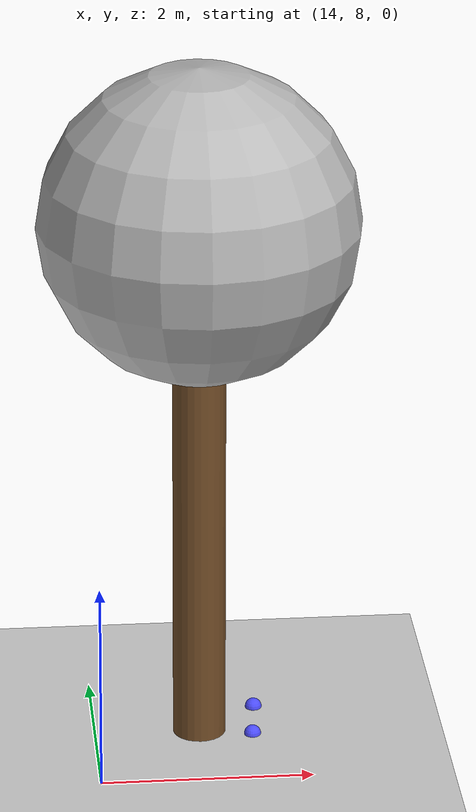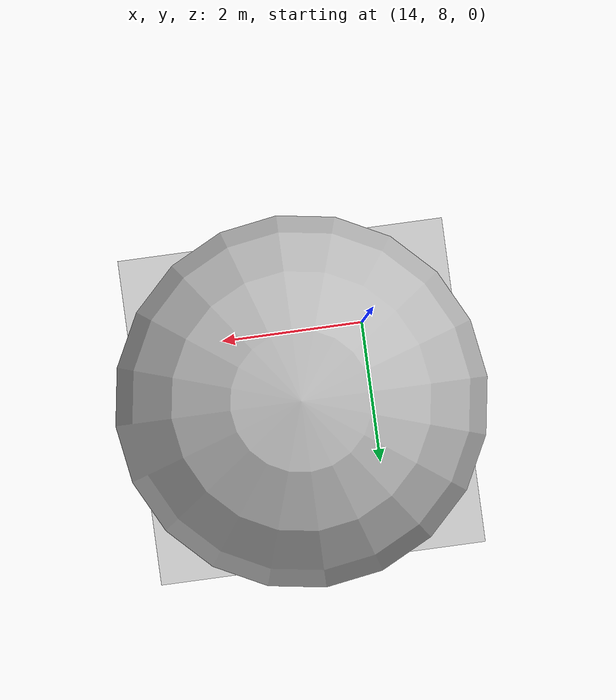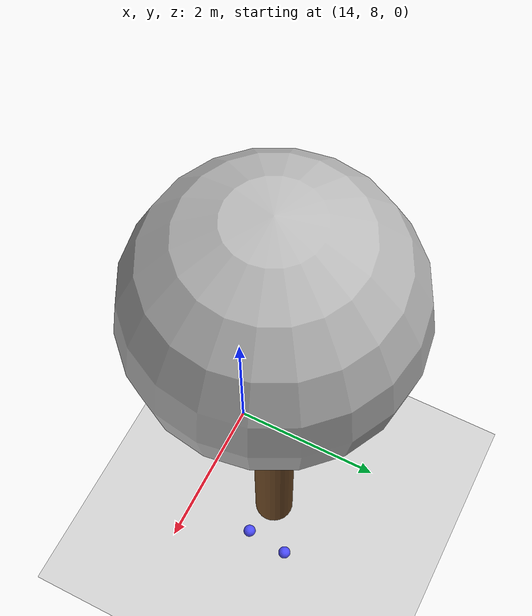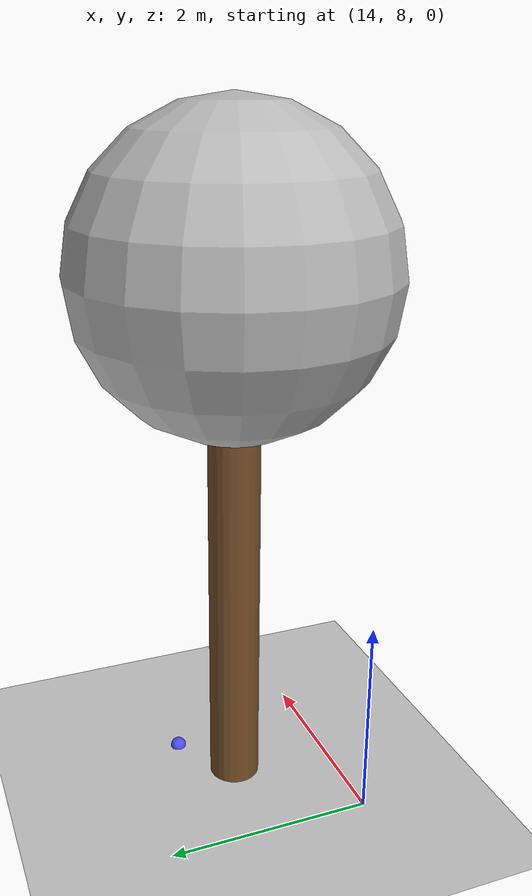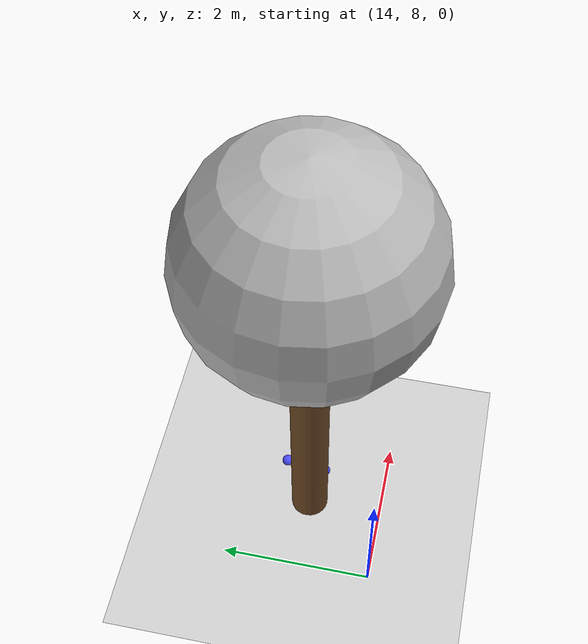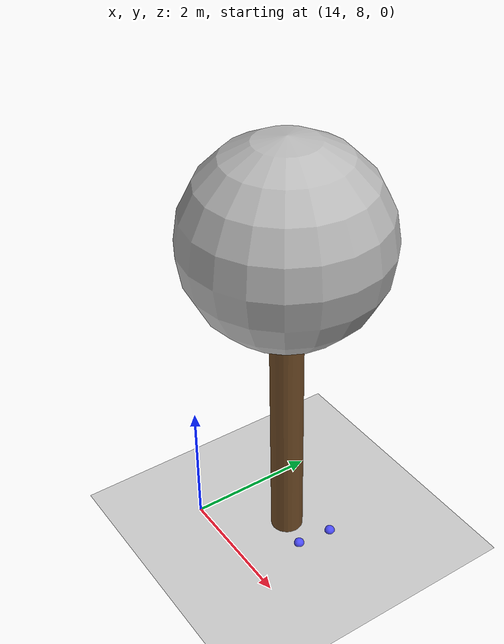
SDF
<sdf version="1.7">
 <world name="default">
  <model name="ground_plane">
   <static>1</static>
   <link name="link">
    <collision name="collision">
     <geometry><plane><normal>0 0 1</normal><size>100 100</size></plane></geometry>
     <surface>
      <contact><collide_bitmask>65535</collide_bitmask></contact>
      <friction><ode><mu>100</mu><mu2>50</mu2></ode></friction>
     </surface>
    </collision>
    <visual name="visual">
     <cast_shadows>0</cast_shadows>
     <geometry><plane><normal>0 0 1</normal><size>100 100</size></plane></geometry>
     <material>
      <script><uri>file://media/materials/scripts/gazebo.material</uri><name>Gazebo/Grey</name></script>
     </material>
    </visual>
   </link>
  </model>
  <model name="tree_simple_73">
   <static>1</static>
   <link name="link">
    <pose>0 0 0.1 0 -0 0</pose>
    <inertial>
     <mass>666</mass>
     <inertia>
      <ixx>0.0861167</ixx>
      <ixy>0</ixy>
      <ixz>0</ixz>
      <iyy>0.0861167</iyy>
      <iyz>0</iyz>
      <izz>0.0861167</izz>
     </inertia>
    </inertial>
    <collision name="collision_trunk">
     <pose>0 0 2 0 -0 0</pose>
     <geometry><cylinder><radius>0.25</radius><length>4</length></cylinder></geometry>
     <surface>
      <contact>
       <poissons_ratio>0.347</poissons_ratio>
       <elastic_modulus>8.8e+09</elastic_modulus>
       <ode><kp>100000</kp><kd>100</kd><max_vel>100</max_vel><min_depth>0.001</min_depth></ode>
      </contact>
      <friction>
       <torsional>
        <coefficient>1</coefficient>
        <use_patch_radius>0</use_patch_radius>
        <surface_radius>0.01</surface_radius>
       </torsional>
      </friction>
     </surface>
    </collision>
    <collision name="collision_treetop">
     <pose>0 0 5.2 0 -0 0</pose>
     <geometry><sphere><radius>1.5</radius></sphere></geometry>
     <surface>
      <contact>
       <poissons_ratio>0.347</poissons_ratio>
       <elastic_modulus>8.8e+09</elastic_modulus>
       <ode><kp>100000</kp><kd>100</kd><max_vel>100</max_vel><min_depth>0.001</min_depth></ode>
      </contact>
      <friction>
       <torsional>
        <coefficient>1</coefficient>
        <use_patch_radius>0</use_patch_radius>
        <surface_radius>0.01</surface_radius>
       </torsional>
      </friction>
     </surface>
    </collision>
    <visual name="trunk">
     <pose>0 0 2 0 -0 0</pose>
     <geometry><cylinder><radius>0.25</radius><length>4</length></cylinder></geometry>
     <material>
      <script>
       <uri>model://tree_simple/scripts</uri>
       <uri>model://tree_simple/materials/textures</uri>
       <name>TreeSimple/Trunk</name>
      </script>
     </material>
    </visual>
    <visual name="treetop">
     <pose>0 0 5.2 0 -0 0</pose>
     <geometry><sphere><radius>1.5</radius></sphere></geometry>
     <material>
      <script>
       <uri>model://tree_simple/scripts</uri>
       <uri>model://tree_simple/materials/textures</uri>
       <name>TreeSimple/Treetop</name>
      </script>
     </material>
    </visual>
   </link>
   <pose>15 9 -0.1 0 -0 0</pose>
  </model>
  <model name="seed_blue_153">
   <link name="link">
    <inertial>
     <mass>1</mass>
     <inertia><ixx>0.1</ixx><ixy>0</ixy><ixz>0</ixz><iyy>0.1</iyy><iyz>0</iyz><izz>0.1</izz></inertia>
    </inertial>
    <visual name="visual">
     <geometry><sphere><radius>0.08</radius></sphere></geometry>
     <material>
      <script><name>Gazebo/Grey</name><uri>file://media/materials/scripts/gazebo.material</uri></script>
      <shader type="pixel"><normal_map>__default__</normal_map></shader>
      <ambient>0.3 0.3 1 1</ambient>
      <diffuse>0.7 0.7 0.7 1</diffuse>
      <specular>0.01 0.01 0.01 1</specular>
      <emissive>0 0 0 1</emissive>
     </material>
    </visual>
    <collision name="collision">
     <geometry><sphere><radius>0.0005</radius></sphere></geometry>
     <surface>
      <friction>
       <ode><mu>1</mu><mu2>1</mu2><fdir1>0 0 0</fdir1><slip1>0</slip1><slip2>0</slip2></ode>
       <torsional>
        <coefficient>1</coefficient>
        <patch_radius>0</patch_radius>
        <surface_radius>0</surface_radius>
        <use_patch_radius>1</use_patch_radius>
        <ode><slip>0</slip></ode>
       </torsional>
      </friction>
      <bounce><restitution_coefficient>0</restitution_coefficient><threshold>1e+06</threshold></bounce>
      <contact>
       <collide_without_contact>0</collide_without_contact>
       <collide_without_contact_bitmask>1</collide_without_contact_bitmask>
       <collide_bitmask>1</collide_bitmask>
       <ode>
        <soft_cfm>0</soft_cfm>
        <soft_erp>0.2</soft_erp>
        <kp>1e+13</kp>
        <kd>1</kd>
        <max_vel>0.01</max_vel>
        <min_depth>0</min_depth>
       </ode>
       <bullet>
        <split_impulse>1</split_impulse>
        <split_impulse_penetration_threshold>-0.01</split_impulse_penetration_threshold>
        <soft_cfm>0</soft_cfm>
        <soft_erp>0.2</soft_erp>
        <kp>1e+13</kp>
        <kd>1</kd>
       </bullet>
      </contact>
     </surface>
    </collision>
   </link>
   <static>0</static>
   <pose>15.5605 9.43723 0.0005 0 -0 0</pose>
  </model>
  <model name="seed_blue_154">
   <link name="link">
    <inertial>
     <mass>1</mass>
     <inertia><ixx>0.1</ixx><ixy>0</ixy><ixz>0</ixz><iyy>0.1</iyy><iyz>0</iyz><izz>0.1</izz></inertia>
    </inertial>
    <visual name="visual">
     <geometry><sphere><radius>0.08</radius></sphere></geometry>
     <material>
      <script><name>Gazebo/Grey</name><uri>file://media/materials/scripts/gazebo.material</uri></script>
      <shader type="pixel"><normal_map>__default__</normal_map></shader>
      <ambient>0.3 0.3 1 1</ambient>
      <diffuse>0.7 0.7 0.7 1</diffuse>
      <specular>0.01 0.01 0.01 1</specular>
      <emissive>0 0 0 1</emissive>
     </material>
    </visual>
    <collision name="collision">
     <geometry><sphere><radius>0.0005</radius></sphere></geometry>
     <surface>
      <friction>
       <ode><mu>1</mu><mu2>1</mu2><fdir1>0 0 0</fdir1><slip1>0</slip1><slip2>0</slip2></ode>
       <torsional>
        <coefficient>1</coefficient>
        <patch_radius>0</patch_radius>
        <surface_radius>0</surface_radius>
        <use_patch_radius>1</use_patch_radius>
        <ode><slip>0</slip></ode>
       </torsional>
      </friction>
      <bounce><restitution_coefficient>0</restitution_coefficient><threshold>1e+06</threshold></bounce>
      <contact>
       <collide_without_contact>0</collide_without_contact>
       <collide_without_contact_bitmask>1</collide_without_contact_bitmask>
       <collide_bitmask>1</collide_bitmask>
       <ode>
        <soft_cfm>0</soft_cfm>
        <soft_erp>0.2</soft_erp>
        <kp>1e+13</kp>
        <kd>1</kd>
        <max_vel>0.01</max_vel>
        <min_depth>0</min_depth>
       </ode>
       <bullet>
        <split_impulse>1</split_impulse>
        <split_impulse_penetration_threshold>-0.01</split_impulse_penetration_threshold>
        <soft_cfm>0</soft_cfm>
        <soft_erp>0.2</soft_erp>
        <kp>1e+13</kp>
        <kd>1</kd>
       </bullet>
      </contact>
     </surface>
    </collision>
   </link>
   <static>0</static>
   <pose>15.5024 8.88359 0.0005 0 -0 0</pose>
  </model>
 </world>
</sdf>
